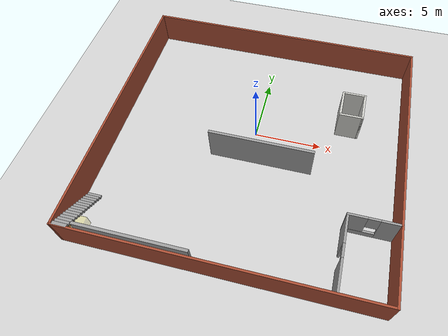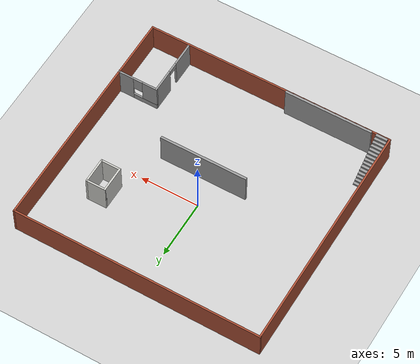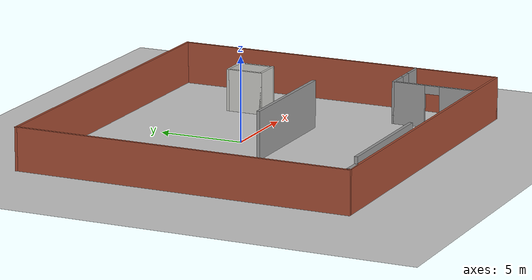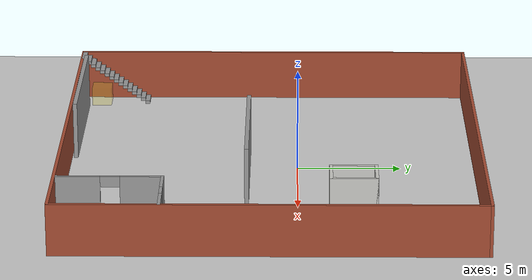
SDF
<sdf version="1.6">
 <world name="default">
  <model name="ground_plane">
   <static>1</static>
   <link name="link">
    <collision name="collision">
     <geometry><plane><normal>0 0 1</normal><size>100 100</size></plane></geometry>
     <surface>
      <contact><collide_bitmask>65535</collide_bitmask></contact>
      <friction><ode><mu>100</mu><mu2>50</mu2></ode></friction>
     </surface>
    </collision>
    <visual name="visual">
     <cast_shadows>0</cast_shadows>
     <geometry><plane><normal>0 0 1</normal><size>100 100</size></plane></geometry>
     <material>
      <script><uri>file://media/materials/scripts/gazebo.material</uri><name>Gazebo/Grey</name></script>
     </material>
    </visual>
   </link>
  </model>
  <model name="kevin_2">
   <pose>0.211598 -1.27295 0 0 -0 0</pose>
   <link name="Stairs_1">
    <visual name="Stairs_1_Visual_0">
     <pose>-9.91319 -6.55547 0.083333 0 -0 0</pose>
     <geometry><box><size>1 0.233333 0.166667</size></box></geometry>
     <material>
      <script><uri>file://media/materials/scripts/gazebo.material</uri><name>Gazebo/Grey</name></script>
      <ambient>1 1 1 1</ambient>
     </material>
     <meta><layer>0</layer></meta>
    </visual>
    <collision name="Stairs_1_Collision_0">
     <geometry><box><size>1 0.233333 0.166667</size></box></geometry>
     <pose>-9.91319 -6.55547 0.083333 0 -0 0</pose>
    </collision>
    <visual name="Stairs_1_Visual_1">
     <pose>-9.91319 -6.78881 0.25 0 -0 0</pose>
     <geometry><box><size>1 0.233333 0.166667</size></box></geometry>
     <material>
      <script><uri>file://media/materials/scripts/gazebo.material</uri><name>Gazebo/Grey</name></script>
      <ambient>1 1 1 1</ambient>
     </material>
     <meta><layer>0</layer></meta>
    </visual>
    <collision name="Stairs_1_Collision_1">
     <geometry><box><size>1 0.233333 0.166667</size></box></geometry>
     <pose>-9.91319 -6.78881 0.25 0 -0 0</pose>
    </collision>
    <visual name="Stairs_1_Visual_2">
     <pose>-9.91319 -7.02214 0.416667 0 -0 0</pose>
     <geometry><box><size>1 0.233333 0.166667</size></box></geometry>
     <material>
      <script><uri>file://media/materials/scripts/gazebo.material</uri><name>Gazebo/Grey</name></script>
      <ambient>1 1 1 1</ambient>
     </material>
     <meta><layer>0</layer></meta>
    </visual>
    <collision name="Stairs_1_Collision_2">
     <geometry><box><size>1 0.233333 0.166667</size></box></geometry>
     <pose>-9.91319 -7.02214 0.416667 0 -0 0</pose>
    </collision>
    <visual name="Stairs_1_Visual_3">
     <pose>-9.91319 -7.25547 0.583333 0 -0 0</pose>
     <geometry><box><size>1 0.233333 0.166667</size></box></geometry>
     <material>
      <script><uri>file://media/materials/scripts/gazebo.material</uri><name>Gazebo/Grey</name></script>
      <ambient>1 1 1 1</ambient>
     </material>
     <meta><layer>0</layer></meta>
    </visual>
    <collision name="Stairs_1_Collision_3">
     <geometry><box><size>1 0.233333 0.166667</size></box></geometry>
     <pose>-9.91319 -7.25547 0.583333 0 -0 0</pose>
    </collision>
    <visual name="Stairs_1_Visual_4">
     <pose>-9.91319 -7.48881 0.75 0 -0 0</pose>
     <geometry><box><size>1 0.233333 0.166667</size></box></geometry>
     <material>
      <script><uri>file://media/materials/scripts/gazebo.material</uri><name>Gazebo/Grey</name></script>
      <ambient>1 1 1 1</ambient>
     </material>
     <meta><layer>0</layer></meta>
    </visual>
    <collision name="Stairs_1_Collision_4">
     <geometry><box><size>1 0.233333 0.166667</size></box></geometry>
     <pose>-9.91319 -7.48881 0.75 0 -0 0</pose>
    </collision>
    <visual name="Stairs_1_Visual_5">
     <pose>-9.91319 -7.72214 0.916667 0 -0 0</pose>
     <geometry><box><size>1 0.233333 0.166667</size></box></geometry>
     <material>
      <script><uri>file://media/materials/scripts/gazebo.material</uri><name>Gazebo/Grey</name></script>
      <ambient>1 1 1 1</ambient>
     </material>
     <meta><layer>0</layer></meta>
    </visual>
    <collision name="Stairs_1_Collision_5">
     <geometry><box><size>1 0.233333 0.166667</size></box></geometry>
     <pose>-9.91319 -7.72214 0.916667 0 -0 0</pose>
    </collision>
    <visual name="Stairs_1_Visual_6">
     <pose>-9.91319 -7.95547 1.08333 0 -0 0</pose>
     <geometry><box><size>1 0.233333 0.166667</size></box></geometry>
     <material>
      <script><uri>file://media/materials/scripts/gazebo.material</uri><name>Gazebo/Grey</name></script>
      <ambient>1 1 1 1</ambient>
     </material>
     <meta><layer>0</layer></meta>
    </visual>
    <collision name="Stairs_1_Collision_6">
     <geometry><box><size>1 0.233333 0.166667</size></box></geometry>
     <pose>-9.91319 -7.95547 1.08333 0 -0 0</pose>
    </collision>
    <visual name="Stairs_1_Visual_7">
     <pose>-9.91319 -8.18881 1.25 0 -0 0</pose>
     <geometry><box><size>1 0.233333 0.166667</size></box></geometry>
     <material>
      <script><uri>file://media/materials/scripts/gazebo.material</uri><name>Gazebo/Grey</name></script>
      <ambient>1 1 1 1</ambient>
     </material>
     <meta><layer>0</layer></meta>
    </visual>
    <collision name="Stairs_1_Collision_7">
     <geometry><box><size>1 0.233333 0.166667</size></box></geometry>
     <pose>-9.91319 -8.18881 1.25 0 -0 0</pose>
    </collision>
    <visual name="Stairs_1_Visual_8">
     <pose>-9.91319 -8.42214 1.41667 0 -0 0</pose>
     <geometry><box><size>1 0.233333 0.166667</size></box></geometry>
     <material>
      <script><uri>file://media/materials/scripts/gazebo.material</uri><name>Gazebo/Grey</name></script>
      <ambient>1 1 1 1</ambient>
     </material>
     <meta><layer>0</layer></meta>
    </visual>
    <collision name="Stairs_1_Collision_8">
     <geometry><box><size>1 0.233333 0.166667</size></box></geometry>
     <pose>-9.91319 -8.42214 1.41667 0 -0 0</pose>
    </collision>
    <visual name="Stairs_1_Visual_9">
     <pose>-9.91319 -8.65547 1.58333 0 -0 0</pose>
     <geometry><box><size>1 0.233333 0.166667</size></box></geometry>
     <material>
      <script><uri>file://media/materials/scripts/gazebo.material</uri><name>Gazebo/Grey</name></script>
      <ambient>1 1 1 1</ambient>
     </material>
     <meta><layer>0</layer></meta>
    </visual>
    <collision name="Stairs_1_Collision_9">
     <geometry><box><size>1 0.233333 0.166667</size></box></geometry>
     <pose>-9.91319 -8.65547 1.58333 0 -0 0</pose>
    </collision>
    <visual name="Stairs_1_Visual_10">
     <pose>-9.91319 -8.88881 1.75 0 -0 0</pose>
     <geometry><box><size>1 0.233333 0.166667</size></box></geometry>
     <material>
      <script><uri>file://media/materials/scripts/gazebo.material</uri><name>Gazebo/Grey</name></script>
      <ambient>1 1 1 1</ambient>
     </material>
     <meta><layer>0</layer></meta>
    </visual>
    <collision name="Stairs_1_Collision_10">
     <geometry><box><size>1 0.233333 0.166667</size></box></geometry>
     <pose>-9.91319 -8.88881 1.75 0 -0 0</pose>
    </collision>
    <visual name="Stairs_1_Visual_11">
     <pose>-9.91319 -9.12214 1.91667 0 -0 0</pose>
     <geometry><box><size>1 0.233333 0.166667</size></box></geometry>
     <material>
      <script><uri>file://media/materials/scripts/gazebo.material</uri><name>Gazebo/Grey</name></script>
      <ambient>1 1 1 1</ambient>
     </material>
     <meta><layer>0</layer></meta>
    </visual>
    <collision name="Stairs_1_Collision_11">
     <geometry><box><size>1 0.233333 0.166667</size></box></geometry>
     <pose>-9.91319 -9.12214 1.91667 0 -0 0</pose>
    </collision>
    <visual name="Stairs_1_Visual_12">
     <pose>-9.91319 -9.35547 2.08333 0 -0 0</pose>
     <geometry><box><size>1 0.233333 0.166667</size></box></geometry>
     <material>
      <script><uri>file://media/materials/scripts/gazebo.material</uri><name>Gazebo/Grey</name></script>
      <ambient>1 1 1 1</ambient>
     </material>
     <meta><layer>0</layer></meta>
    </visual>
    <collision name="Stairs_1_Collision_12">
     <geometry><box><size>1 0.233333 0.166667</size></box></geometry>
     <pose>-9.91319 -9.35547 2.08333 0 -0 0</pose>
    </collision>
    <visual name="Stairs_1_Visual_13">
     <pose>-9.91319 -9.58881 2.25 0 -0 0</pose>
     <geometry><box><size>1 0.233333 0.166667</size></box></geometry>
     <material>
      <script><uri>file://media/materials/scripts/gazebo.material</uri><name>Gazebo/Grey</name></script>
      <ambient>1 1 1 1</ambient>
     </material>
     <meta><layer>0</layer></meta>
    </visual>
    <collision name="Stairs_1_Collision_13">
     <geometry><box><size>1 0.233333 0.166667</size></box></geometry>
     <pose>-9.91319 -9.58881 2.25 0 -0 0</pose>
    </collision>
    <visual name="Stairs_1_Visual_14">
     <pose>-9.91319 -9.82214 2.41667 0 -0 0</pose>
     <geometry><box><size>1 0.233333 0.166667</size></box></geometry>
     <material>
      <script><uri>file://media/materials/scripts/gazebo.material</uri><name>Gazebo/Grey</name></script>
      <ambient>1 1 1 1</ambient>
     </material>
     <meta><layer>0</layer></meta>
    </visual>
    <collision name="Stairs_1_Collision_14">
     <geometry><box><size>1 0.233333 0.166667</size></box></geometry>
     <pose>-9.91319 -9.82214 2.41667 0 -0 0</pose>
    </collision>
   </link>
   <link name="Wall_11">
    <collision name="Wall_11_Collision">
     <geometry><box><size>20 0.15 2.5</size></box></geometry>
     <pose>0 0 1.25 0 -0 0</pose>
    </collision>
    <visual name="Wall_11_Visual">
     <pose>0 0 1.25 0 -0 0</pose>
     <geometry><box><size>20 0.15 2.5</size></box></geometry>
     <material>
      <script><uri>file://media/materials/scripts/gazebo.material</uri><name>Gazebo/Bricks</name></script>
      <ambient>1 1 1 1</ambient>
     </material>
     <meta><layer>0</layer></meta>
    </visual>
    <pose>-10.55 0 0 0 0 -1.5708</pose>
   </link>
   <link name="Wall_12">
    <collision name="Wall_12_Collision">
     <geometry><box><size>21.25 0.15 2.5</size></box></geometry>
     <pose>0 0 1.25 0 -0 0</pose>
    </collision>
    <visual name="Wall_12_Visual">
     <pose>0 0 1.25 0 -0 0</pose>
     <geometry><box><size>21.25 0.15 2.5</size></box></geometry>
     <material>
      <script><uri>file://media/materials/scripts/gazebo.material</uri><name>Gazebo/Bricks</name></script>
      <ambient>1 1 1 1</ambient>
     </material>
     <meta><layer>0</layer></meta>
    </visual>
    <pose>0 -9.925 0 0 -0 0</pose>
   </link>
   <link name="Wall_13">
    <collision name="Wall_13_Collision">
     <geometry><box><size>20 0.15 2.5</size></box></geometry>
     <pose>0 0 1.25 0 -0 0</pose>
    </collision>
    <visual name="Wall_13_Visual">
     <pose>0 0 1.25 0 -0 0</pose>
     <geometry><box><size>20 0.15 2.5</size></box></geometry>
     <material>
      <script><uri>file://media/materials/scripts/gazebo.material</uri><name>Gazebo/Bricks</name></script>
      <ambient>1 1 1 1</ambient>
     </material>
     <meta><layer>0</layer></meta>
    </visual>
    <pose>10.55 0 0 0 -0 1.5708</pose>
   </link>
   <link name="Wall_14">
    <collision name="Wall_14_Collision">
     <geometry><box><size>21.25 0.15 2.5</size></box></geometry>
     <pose>0 0 1.25 0 -0 0</pose>
    </collision>
    <visual name="Wall_14_Visual">
     <pose>0 0 1.25 0 -0 0</pose>
     <geometry><box><size>21.25 0.15 2.5</size></box></geometry>
     <material>
      <script><uri>file://media/materials/scripts/gazebo.material</uri><name>Gazebo/Bricks</name></script>
      <ambient>1 1 1 1</ambient>
     </material>
     <meta><layer>0</layer></meta>
    </visual>
    <pose>0 9.925 0 0 -0 3.14159</pose>
   </link>
   <link name="Wall_16">
    <pose>8.8606 -4.93398 0 0 -0 3.14159</pose>
    <visual name="Wall_16_Visual_0">
     <pose>-1.06341 0 1.25 0 -0 0</pose>
     <geometry><box><size>1.37317 0.15 2.5</size></box></geometry>
     <material>
      <script><uri>file://media/materials/scripts/gazebo.material</uri><name>Gazebo/Grey</name></script>
      <ambient>1 1 1 1</ambient>
     </material>
     <meta><layer>0</layer></meta>
    </visual>
    <collision name="Wall_16_Collision_0">
     <geometry><box><size>1.37317 0.15 2.5</size></box></geometry>
     <pose>-1.06341 0 1.25 0 -0 0</pose>
    </collision>
    <visual name="Wall_16_Visual_1">
     <pose>0.686585 0 0.25 0 -0 0</pose>
     <geometry><box><size>2.12683 0.15 0.5</size></box></geometry>
     <material>
      <script><uri>file://media/materials/scripts/gazebo.material</uri><name>Gazebo/Grey</name></script>
      <ambient>1 1 1 1</ambient>
     </material>
     <meta><layer>0</layer></meta>
    </visual>
    <collision name="Wall_16_Collision_1">
     <geometry><box><size>2.12683 0.15 0.5</size></box></geometry>
     <pose>0.686585 0 0.25 0 -0 0</pose>
    </collision>
    <visual name="Wall_16_Visual_2">
     <pose>1.08658 0 1.5 0 -0 0</pose>
     <geometry><box><size>1.32683 0.15 2</size></box></geometry>
     <material>
      <script><uri>file://media/materials/scripts/gazebo.material</uri><name>Gazebo/Grey</name></script>
      <ambient>1 1 1 1</ambient>
     </material>
     <meta><layer>0</layer></meta>
    </visual>
    <collision name="Wall_16_Collision_2">
     <geometry><box><size>1.32683 0.15 2</size></box></geometry>
     <pose>1.08658 0 1.5 0 -0 0</pose>
    </collision>
    <visual name="Wall_16_Visual_3">
     <pose>0.02317 0 1.9 0 -0 0</pose>
     <geometry><box><size>0.8 0.15 1.2</size></box></geometry>
     <material>
      <script><uri>file://media/materials/scripts/gazebo.material</uri><name>Gazebo/Grey</name></script>
      <ambient>1 1 1 1</ambient>
     </material>
     <meta><layer>0</layer></meta>
    </visual>
    <collision name="Wall_16_Collision_3">
     <geometry><box><size>0.8 0.15 1.2</size></box></geometry>
     <pose>0.02317 0 1.9 0 -0 0</pose>
    </collision>
   </link>
   <link name="Wall_17">
    <pose>7.1856 -7.35898 0 0 0 -1.5708</pose>
    <visual name="Wall_17_Visual_0">
     <pose>-1.48463 0 1.25 0 -0 0</pose>
     <geometry><box><size>2.03074 0.15 2.5</size></box></geometry>
     <material>
      <script><uri>file://media/materials/scripts/gazebo.material</uri><name>Gazebo/Grey</name></script>
      <ambient>1 1 1 1</ambient>
     </material>
     <meta><layer>0</layer></meta>
    </visual>
    <collision name="Wall_17_Collision_0">
     <geometry><box><size>2.03074 0.15 2.5</size></box></geometry>
     <pose>-1.48463 0 1.25 0 -0 0</pose>
    </collision>
    <visual name="Wall_17_Visual_1">
     <pose>1.46537 0 1.25 0 -0 0</pose>
     <geometry><box><size>2.06926 0.15 2.5</size></box></geometry>
     <material>
      <script><uri>file://media/materials/scripts/gazebo.material</uri><name>Gazebo/Grey</name></script>
      <ambient>1 1 1 1</ambient>
     </material>
     <meta><layer>0</layer></meta>
    </visual>
    <collision name="Wall_17_Collision_1">
     <geometry><box><size>2.06926 0.15 2.5</size></box></geometry>
     <pose>1.46537 0 1.25 0 -0 0</pose>
    </collision>
    <visual name="Wall_17_Visual_2">
     <pose>-0.01926 0 2.25 0 -0 0</pose>
     <geometry><box><size>0.9 0.15 0.5</size></box></geometry>
     <material>
      <script><uri>file://media/materials/scripts/gazebo.material</uri><name>Gazebo/Grey</name></script>
      <ambient>1 1 1 1</ambient>
     </material>
     <meta><layer>0</layer></meta>
    </visual>
    <collision name="Wall_17_Collision_2">
     <geometry><box><size>0.9 0.15 0.5</size></box></geometry>
     <pose>-0.01926 0 2.25 0 -0 0</pose>
    </collision>
   </link>
   <link name="Wall_22">
    <collision name="Wall_22_Collision">
     <geometry><box><size>2.25 0.15 2.5</size></box></geometry>
     <pose>0 0 1.25 0 -0 0</pose>
    </collision>
    <visual name="Wall_22_Visual">
     <pose>0 0 1.25 0 -0 0</pose>
     <geometry><box><size>2.25 0.15 2.5</size></box></geometry>
     <material>
      <script><uri>file://media/materials/scripts/gazebo.material</uri><name>Gazebo/CeilingTiled</name></script>
      <ambient>1 1 1 1</ambient>
     </material>
     <meta><layer>0</layer></meta>
    </visual>
    <pose>5.72412 3.85125 0 0 0 -1.5708</pose>
   </link>
   <link name="Wall_23">
    <collision name="Wall_23_Collision">
     <geometry><box><size>1.75 0.15 2.5</size></box></geometry>
     <pose>0 0 1.25 0 -0 0</pose>
    </collision>
    <visual name="Wall_23_Visual">
     <pose>0 0 1.25 0 -0 0</pose>
     <geometry><box><size>1.75 0.15 2.5</size></box></geometry>
     <material>
      <script><uri>file://media/materials/scripts/gazebo.material</uri><name>Gazebo/CeilingTiled</name></script>
      <ambient>1 1 1 1</ambient>
     </material>
     <meta><layer>0</layer></meta>
    </visual>
    <pose>6.52412 2.80125 0 0 -0 0</pose>
   </link>
   <link name="Wall_24">
    <collision name="Wall_24_Collision">
     <geometry><box><size>2.25 0.15 2.5</size></box></geometry>
     <pose>0 0 1.25 0 -0 0</pose>
    </collision>
    <visual name="Wall_24_Visual">
     <pose>0 0 1.25 0 -0 0</pose>
     <geometry><box><size>2.25 0.15 2.5</size></box></geometry>
     <material>
      <script><uri>file://media/materials/scripts/gazebo.material</uri><name>Gazebo/CeilingTiled</name></script>
      <ambient>1 1 1 1</ambient>
     </material>
     <meta><layer>0</layer></meta>
    </visual>
    <pose>7.32412 3.85125 0 0 -0 1.5708</pose>
   </link>
   <link name="Wall_25">
    <collision name="Wall_25_Collision">
     <geometry><box><size>1.75 0.15 2.5</size></box></geometry>
     <pose>0 0 1.25 0 -0 0</pose>
    </collision>
    <visual name="Wall_25_Visual">
     <pose>0 0 1.25 0 -0 0</pose>
     <geometry><box><size>1.75 0.15 2.5</size></box></geometry>
     <material>
      <script><uri>file://media/materials/scripts/gazebo.material</uri><name>Gazebo/CeilingTiled</name></script>
      <ambient>1 1 1 1</ambient>
     </material>
     <meta><layer>0</layer></meta>
    </visual>
    <pose>6.52412 4.90125 0 0 -0 3.14159</pose>
   </link>
   <static>1</static>
  </model>
  <model name="grey_wall">
   <static>1</static>
   <link name="link">
    <pose>0 0 1.4 0 -0 0</pose>
    <collision name="collision"><geometry><box><size>7.5 0.2 2.8</size></box></geometry></collision>
    <visual name="visual">
     <cast_shadows>0</cast_shadows>
     <geometry><box><size>7.5 0.2 2.8</size></box></geometry>
     <material>
      <script>
       <uri>model://grey_wall/materials/scripts</uri>
       <uri>model://grey_wall/materials/textures</uri>
       <name>vrc/grey_wall</name>
      </script>
     </material>
    </visual>
   </link>
   <pose>-5.14997 -10.9358 0 0 -0 0</pose>
  </model>
  <model name="RegionEventBox">
   <static>1</static>
   <pose>-9.58314 -10.2192 0 0 -0 0</pose>
   <link name="link">
    <visual name="visual">
     <transparency>0.75</transparency>
     <geometry><box><size>1 1 1.75</size></box></geometry>
     <material>
      <script><uri>file://media/materials/scripts/gazebo.material</uri><name>Gazebo/Yellow</name></script>
     </material>
    </visual>
   </link>
   <plugin name="region_event_box" filename="libRegionEventBoxPlugin.so">
    <event><name>model_in_region_event_box</name><type>inclusion</type><active>true</active></event>
   </plugin>
  </model>
  <model name="grey_wall_0">
   <static>1</static>
   <link name="link">
    <pose>0 0 1.4 0 -0 0</pose>
    <collision name="collision"><geometry><box><size>7.5 0.2 2.8</size></box></geometry></collision>
    <visual name="visual">
     <cast_shadows>0</cast_shadows>
     <geometry><box><size>7.5 0.2 2.8</size></box></geometry>
     <material>
      <script>
       <uri>model://grey_wall/materials/scripts</uri>
       <uri>model://grey_wall/materials/textures</uri>
       <name>vrc/grey_wall</name>
      </script>
     </material>
    </visual>
   </link>
   <pose>0.924755 -2.41047 0 0 -0 0</pose>
  </model>
 </world>
</sdf>
